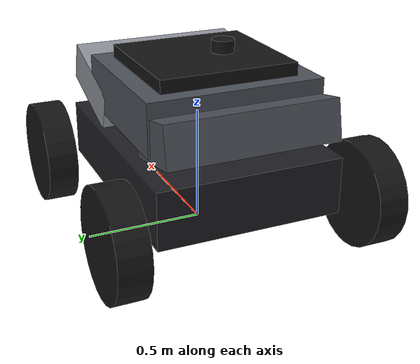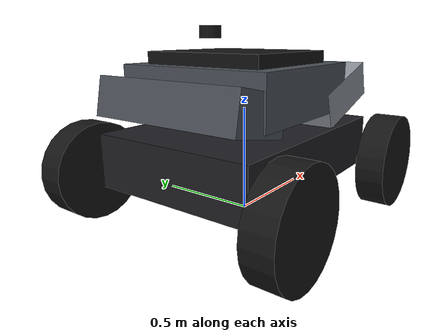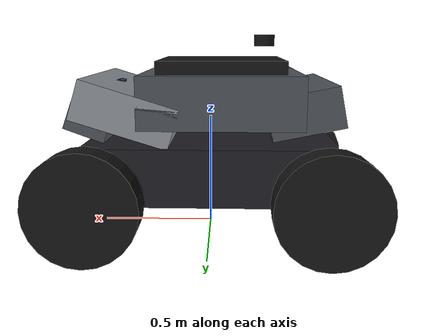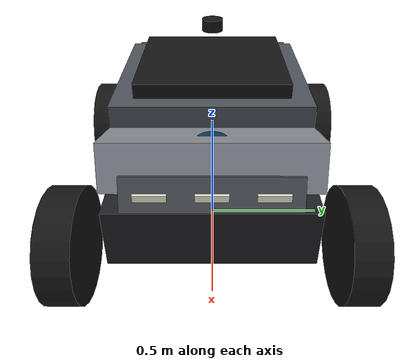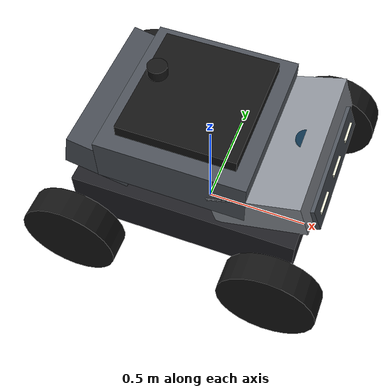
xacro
<?xml version="1.0"?>

<robot
  name="evrenos_evr03"
  xmlns:xacro="http://www.ros.org/wiki/xacro">

  <xacro:include filename="evrenos_materials.xacro"/>

  <xacro:include filename="evrenos_base.xacro"/>

  <xacro:include filename="evrenos_body.xacro"/>

  <xacro:include filename="evrenos_wheels.xacro"/>

  <!-- Sensors -->
  <xacro:include filename="evrenos_sensors.xacro"/>

    <!-- Gazebo physics and drive -->
  <xacro:include filename="evrenos_gazebo.xacro"/>

</robot>

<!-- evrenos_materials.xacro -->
<robot xmlns:xacro="http://www.ros.org/wiki/xacro">

  <material name="evrenos_body">
    <color rgba="0.30 0.32 0.35 1.0"/>
  </material>

  <material name="evrenos_dark">
    <color rgba="0.08 0.08 0.08 1.0"/>
  </material>

  <material name="evrenos_chassis">
    <color rgba="0.12 0.12 0.14 1.0"/>
  </material>

  <material name="evrenos_metal">
    <color rgba="0.55 0.57 0.60 1.0"/>
  </material>

  <material name="evrenos_sensor">
    <color rgba="0.05 0.20 0.30 1.0"/>
  </material>

  <material name="evrenos_light">
    <color rgba="0.95 0.95 0.85 1.0"/>
  </material>

</robot>

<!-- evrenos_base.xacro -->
<robot xmlns:xacro="http://www.ros.org/wiki/xacro">

  <!-- EVRENOS simplified physical chassis -->

  <xacro:property name="vehicle_scale" value="1.00"/>

  <xacro:property name="base_length" value="${1.05 * vehicle_scale}"/>
  <xacro:property name="base_width"  value="${0.78 * vehicle_scale}"/>
  <xacro:property name="base_height" value="${0.24 * vehicle_scale}"/>

  <xacro:property name="base_ground_clearance" value="${0.18 * vehicle_scale}"/>

  <!-- 84 kg chassis + 4 x 4 kg wheel ~= 100 kg -->
  <xacro:property name="base_mass" value="${84.0 * vehicle_scale ** 3}"/>

  <link name="base_footprint"/>

  <link name="base_link">

    <!-- Structural chassis -->
    <visual>
      <origin xyz="0 0 0" rpy="0 0 0"/>

      <geometry>
        <box size="${base_length} ${base_width} ${base_height}"/>
      </geometry>

      <material name="evrenos_chassis"/>
    </visual>

    <!-- Simplified physical collision -->
    <collision>
      <origin xyz="0 0 0" rpy="0 0 0"/>

      <geometry>
        <box size="${base_length} ${base_width} ${base_height}"/>
      </geometry>
    </collision>

    <inertial>
      <origin xyz="0 0 0" rpy="0 0 0"/>

      <mass value="${base_mass}"/>

      <inertia
        ixx="${base_mass * (base_width * base_width + base_height * base_height) / 12.0}"
        ixy="0.0"
        ixz="0.0"
        iyy="${base_mass * (base_length * base_length + base_height * base_height) / 12.0}"
        iyz="0.0"
        izz="${base_mass * (base_length * base_length + base_width * base_width) / 12.0}"/>
    </inertial>

  </link>

  <joint name="base_footprint_joint" type="fixed">

    <parent link="base_footprint"/>
    <child link="base_link"/>

    <origin
      xyz="0 0 ${base_ground_clearance + base_height / 2.0}"
      rpy="0 0 0"/>

  </joint>

</robot>

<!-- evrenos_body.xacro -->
<robot xmlns:xacro="http://www.ros.org/wiki/xacro">

  <!-- Main upper body -->
  <link name="body_link">

    <!-- Center armored body -->
    <visual>
      <origin xyz="${-0.05 * vehicle_scale} 0 ${0.10 * vehicle_scale}" rpy="0 0 0"/>

      <geometry>
        <box size="${0.68 * vehicle_scale} ${0.74 * vehicle_scale} ${0.22 * vehicle_scale}"/>
      </geometry>

      <material name="evrenos_body"/>
    </visual>

    <!-- Front sloped armor -->
    <visual>
      <origin xyz="${0.34 * vehicle_scale} 0 ${0.055 * vehicle_scale}" rpy="0 -0.30 0"/>

      <geometry>
        <box size="${0.42 * vehicle_scale} ${0.74 * vehicle_scale} ${0.17 * vehicle_scale}"/>
      </geometry>

      <material name="evrenos_metal"/>
    </visual>

    <!-- Rear upper armor -->
    <visual>
      <origin xyz="${-0.39 * vehicle_scale} 0 ${0.06 * vehicle_scale}" rpy="0 0.20 0"/>

      <geometry>
        <box size="${0.30 * vehicle_scale} ${0.72 * vehicle_scale} ${0.17 * vehicle_scale}"/>
      </geometry>

      <material name="evrenos_body"/>
    </visual>

    <!-- Roof -->
    <visual>
      <origin xyz="${-0.05 * vehicle_scale} 0 ${0.235 * vehicle_scale}" rpy="0 0 0"/>

      <geometry>
        <box size="${0.54 * vehicle_scale} ${0.58 * vehicle_scale} ${0.06 * vehicle_scale}"/>
      </geometry>

      <material name="evrenos_dark"/>
    </visual>

    <!-- Front center armor panel -->
    <visual>
      <origin xyz="${0.50 * vehicle_scale} 0 ${0.015 * vehicle_scale}" rpy="0 -0.35 0"/>

      <geometry>
        <box size="${0.18 * vehicle_scale} ${0.60 * vehicle_scale} ${0.12 * vehicle_scale}"/>
      </geometry>

      <material name="evrenos_body"/>
    </visual>

    <!-- Front left lamp -->
    <visual>
      <origin xyz="${0.575 * vehicle_scale} ${0.20 * vehicle_scale} ${0.015 * vehicle_scale}" rpy="0 0 0"/>

      <geometry>
        <box size="${0.035 * vehicle_scale} ${0.11 * vehicle_scale} ${0.07 * vehicle_scale}"/>
      </geometry>

      <material name="evrenos_light"/>
    </visual>

    <!-- Front center lamp -->
    <visual>
      <origin xyz="${0.575 * vehicle_scale} 0 ${0.015 * vehicle_scale}" rpy="0 0 0"/>

      <geometry>
        <box size="${0.035 * vehicle_scale} ${0.11 * vehicle_scale} ${0.07 * vehicle_scale}"/>
      </geometry>

      <material name="evrenos_light"/>
    </visual>

    <!-- Front right lamp -->
    <visual>
      <origin xyz="${0.575 * vehicle_scale} ${-0.20 * vehicle_scale} ${0.015 * vehicle_scale}" rpy="0 0 0"/>

      <geometry>
        <box size="${0.035 * vehicle_scale} ${0.11 * vehicle_scale} ${0.07 * vehicle_scale}"/>
      </geometry>

      <material name="evrenos_light"/>
    </visual>

  </link>

  <!--
    body_link is attached to the chassis.
    base_link center is inside the lower chassis.
  -->
  <joint name="body_joint" type="fixed">

    <parent link="base_link"/>
    <child link="body_link"/>

    <origin
      xyz="0 0 ${base_height / 2.0 + 0.08 * vehicle_scale}"
      rpy="0 0 0"/>

  </joint>

</robot>

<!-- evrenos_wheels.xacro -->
<robot xmlns:xacro="http://www.ros.org/wiki/xacro">

  <!-- KTR wheel dimensions -->
  <xacro:property name="wheel_radius" value="${0.225 * vehicle_scale}"/>
  <xacro:property name="wheel_width"  value="${0.13 * vehicle_scale}"/>
  <xacro:property name="wheel_mass"   value="${4.0 * vehicle_scale ** 3}"/>

  <!--
    Temporary geometry derived from overall vehicle dimensions.

    Overall length = 1.39 m
    Wheel diameter = 0.45 m

    wheelbase ~= 1.39 - 0.45 = 0.94 m
  -->
  <xacro:property name="wheelbase" value="${0.94 * vehicle_scale}"/>

  <!--
    Overall width = 1.195 m
    wheel width   = 0.13 m

    Track center distance:
      1.195 - 0.13 = 1.065 m
  -->
  <xacro:property name="track_width" value="${1.065 * vehicle_scale}"/>

  <xacro:property
    name="wheel_x_position"
    value="${wheelbase / 2.0}"/>

  <xacro:property
    name="wheel_y_position"
    value="${track_width / 2.0}"/>

  <!--
    base_link center is:
      base_ground_clearance + base_height / 2

    Wheel center is wheel_radius from ground.
  -->
  <xacro:property
    name="wheel_z_position"
    value="${wheel_radius - (base_ground_clearance + base_height / 2.0)}"/>

  <!-- One EVRENOS wheel -->
  <xacro:macro
    name="evrenos_wheel"
    params="wheel_name x_position y_position">

    <link name="${wheel_name}_wheel_link">

      <visual>

        <!-- Cylinder native axis is Z.
             Rotate 90 deg around X to align with vehicle Y axis. -->
        <origin xyz="0 0 0" rpy="${pi / 2.0} 0 0"/>

        <geometry>
          <cylinder
            radius="${wheel_radius}"
            length="${wheel_width}"/>
        </geometry>

        <material name="evrenos_dark"/>

      </visual>

      <collision>

        <origin xyz="0 0 0" rpy="${pi / 2.0} 0 0"/>

        <geometry>
          <cylinder
            radius="${wheel_radius}"
            length="${wheel_width}"/>
        </geometry>

      </collision>

      <inertial>

        <origin xyz="0 0 0" rpy="0 0 0"/>

        <mass value="${wheel_mass}"/>

        <inertia
          ixx="${wheel_mass * (3.0 * wheel_radius * wheel_radius + wheel_width * wheel_width) / 12.0}"
          ixy="0.0"
          ixz="0.0"
          iyy="${wheel_mass * wheel_radius * wheel_radius / 2.0}"
          iyz="0.0"
          izz="${wheel_mass * (3.0 * wheel_radius * wheel_radius + wheel_width * wheel_width) / 12.0}"/>

      </inertial>

    </link>

    <joint
      name="${wheel_name}_wheel_joint"
      type="continuous">

      <parent link="base_link"/>
      <child link="${wheel_name}_wheel_link"/>

      <origin
        xyz="${x_position} ${y_position} ${wheel_z_position}"
        rpy="0 0 0"/>

      <axis xyz="0 1 0"/>

      <dynamics
        damping="0.1"
        friction="0.1"/>

    </joint>

  </xacro:macro>

  <!-- FRONT LEFT -->
  <xacro:evrenos_wheel
    wheel_name="front_left"
    x_position="${wheel_x_position}"
    y_position="${wheel_y_position}"/>

  <!-- FRONT RIGHT -->
  <xacro:evrenos_wheel
    wheel_name="front_right"
    x_position="${wheel_x_position}"
    y_position="${-wheel_y_position}"/>

  <!-- REAR LEFT -->
  <xacro:evrenos_wheel
    wheel_name="rear_left"
    x_position="${-wheel_x_position}"
    y_position="${wheel_y_position}"/>

  <!-- REAR RIGHT -->
  <xacro:evrenos_wheel
    wheel_name="rear_right"
    x_position="${-wheel_x_position}"
    y_position="${-wheel_y_position}"/>

</robot>

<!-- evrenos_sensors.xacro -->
<robot xmlns:xacro="http://www.ros.org/wiki/xacro">

  <!--
    EVRENOS sensor frame layout

    IMPORTANT:
    Positions are initial simulation approximations.

    +X = Front
    +Y = Left
    +Z = Up

    Real CAD measurements can replace these later.
  -->

  <!-- UNITREE 4D LIDAR L1                                    -->

  <link name="lidar_link">

    <visual>
      <origin xyz="0 0 0.035" rpy="0 0 0"/>

      <geometry>
        <cylinder radius="0.055" length="0.07"/>
      </geometry>

      <material name="evrenos_sensor"/>
    </visual>

  </link>

  <joint name="lidar_joint" type="fixed">

    <parent link="base_link"/>
    <child link="lidar_link"/>

    <!-- Front-facing mount; lidar_link center is 0.60 m above ground. -->
    <origin
      xyz="${base_length / 2.0 - 0.08} 0 ${0.60 - (base_ground_clearance + base_height / 2.0)}"
      rpy="0 0 0"/>

  </joint>

  <!-- Unitree L1 PointCloud2 measurement/output frame -->
  <link name="unilidar_lidar"/>

  <joint name="unilidar_lidar_joint" type="fixed">

    <parent link="lidar_link"/>
    <child link="unilidar_lidar"/>

    <!-- Replace only if a verified sensor-to-mount transform is measured. -->
    <origin xyz="0 0 0" rpy="0 0 0"/>

  </joint>

  <!-- Unitree L1 built-in IMU measurement/output frame -->
  <link name="unilidar_imu"/>

  <joint name="unilidar_imu_joint" type="fixed">

    <parent link="unilidar_lidar"/>
    <child link="unilidar_imu"/>

    <!-- Official Unitree L1 LiDAR-to-IMU transform. -->
    <origin xyz="-0.007698 -0.014655 0.00667" rpy="0 0 0"/>

  </joint>

  <!-- INTEL REALSENSE CAMERA                                 -->

  <link name="camera_link">

    <visual>
      <origin xyz="0 0 0" rpy="0 0 0"/>

      <geometry>
        <box size="0.035 0.12 0.035"/>
      </geometry>

      <material name="evrenos_dark"/>
    </visual>

  </link>

  <joint name="camera_joint" type="fixed">

    <parent link="body_link"/>
    <child link="camera_link"/>

    <!-- Front facing camera -->
    <origin
      xyz="${0.48 * vehicle_scale} 0 ${0.14 * vehicle_scale}"
      rpy="0 0 0"/>

  </joint>

  <!-- ROS optical frame convention -->
  <link name="camera_optical_frame"/>

  <joint name="camera_optical_joint" type="fixed">

    <parent link="camera_link"/>
    <child link="camera_optical_frame"/>

    <origin
      xyz="0 0 0"
      rpy="${-pi/2.0} 0 ${-pi/2.0}"/>

  </joint>

  <!-- BNO055 IMU                                             -->

  <link name="imu_link">

    <visual>

      <origin xyz="0 0 0" rpy="0 0 0"/>

      <geometry>
        <box size="0.05 0.04 0.015"/>
      </geometry>

      <material name="evrenos_sensor"/>

    </visual>

  </link>

  <joint name="imu_joint" type="fixed">

    <parent link="base_link"/>
    <child link="imu_link"/>

    <!-- Close to vehicle center / center of mass -->
    <origin
      xyz="0 0 ${0.05 * vehicle_scale}"
      rpy="0 0 0"/>

  </joint>

  <!-- EMLID REACH M+ / RTK                                   -->

  <link name="gps_link">

    <visual>

      <origin xyz="0 0 0.025" rpy="0 0 0"/>

      <geometry>
        <cylinder radius="0.045" length="0.05"/>
      </geometry>

      <material name="evrenos_dark"/>

    </visual>

  </link>

  <joint name="gps_joint" type="fixed">

    <parent link="body_link"/>
    <child link="gps_link"/>

    <!-- Upper rear section -->
    <origin
      xyz="${-0.24 * vehicle_scale} 0 ${0.32 * vehicle_scale}"
      rpy="0 0 0"/>

  </joint>

</robot>
